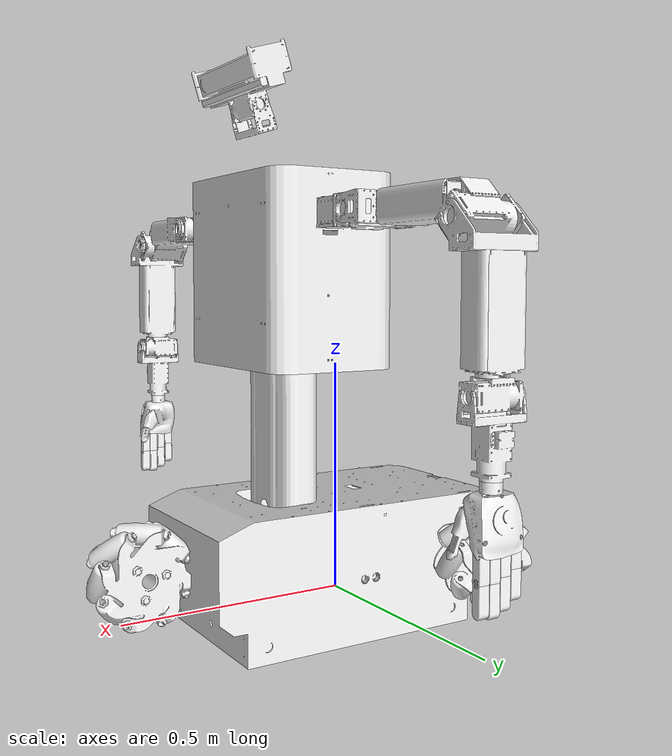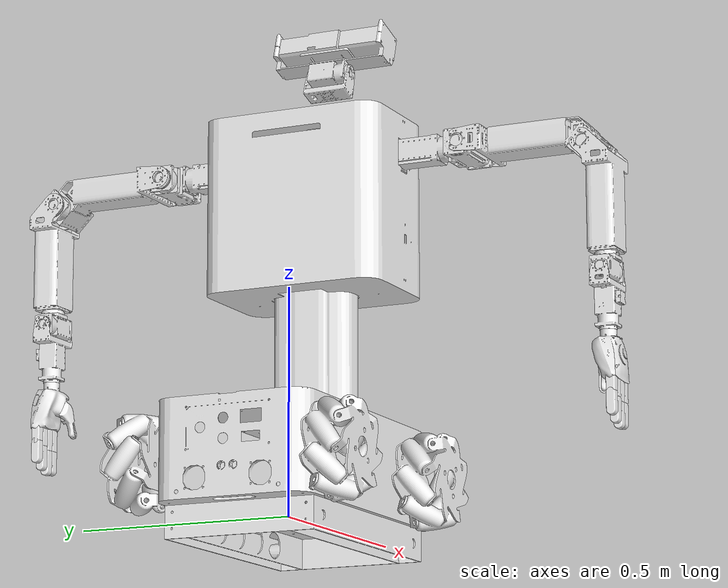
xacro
<?xml version="1.0"?>
<robot name="humic" xmlns:xacro="http://ros.org/wiki/xacro">

    <!-- some parameters -->
    <xacro:property name="pi" value="3.141592654" />

    <xacro:include filename="$(find humic_description)/urdf/materials.xacro"/>

    <xacro:include filename="$(find humic_description)/urdf/humic.gazebo.xacro"/>

    <xacro:include filename="$(find humic_description)/urdf/humic.right_transmission.xacro"/>
    <xacro:include filename="$(find humic_description)/urdf/humic.left_transmission.xacro"/>
    <xacro:include filename="$(find humic_description)/urdf/humic.column_transmission.xacro"/>
    <xacro:include filename="$(find humic_description)/urdf/humic.head_transmission.xacro"/>

    <!-- base footprint -->
    <link name="base_footprint"/>

    <joint name="base_joint" type="fixed">
        <origin xyz="0 0 0.0945" rpy="0 0 0"/>
        <parent link="base_footprint"/>
        <child link="base_link"/>
    </joint>

    <!-- Mobile-Platform Body -->
    <link name="base_link">
        <visual>
            <origin xyz="0 0 0" rpy="0 0 0"/>
            <geometry>
                <mesh filename="package://humic_description/meshes/STL/MobileBody.stl" scale="0.027 0.027 0.027"/>
            </geometry>
            <material name="white"/>
        </visual>

        <collision>
            <origin xyz="0 0 0" rpy="0 0 0"/>
            <geometry>
                <mesh filename="package://humic_description/meshes/STL/MobileBody.stl" scale="0.027 0.027 0.027"/>
            </geometry>
        </collision>

        <inertial>
            <mass value="64.126"/>
            <inertia ixx="2.43844e+08" iyy="2.46565e+09" izz="1.39943e+09" ixy="-3.45214e+06" ixz="9.87419e+06" iyz="-2.83701e+08"/>
        </inertial>
    </link>

    <joint name="front_ultrasonic_joint" type="fixed">
        <origin xyz="0.335 0 0.102" rpy="0 0 0"/>
        <parent link="base_link"/>
        <child link="front_ultrasonic"/>
    </joint>

    <link name="front_ultrasonic">
        <visual>
            <origin xyz="0 0 0" rpy="0 0 0"/>
            <geometry>
                <box size="0.001 0.005 0.005"/>
            </geometry>
            <material name="white"/>
        </visual>
    </link>

    <joint name="left_ultrasonic_joint" type="fixed">
        <origin xyz="-0.01 0.1765 0.102" rpy="0 0 ${pi*0.5}"/>
        <parent link="base_link"/>
        <child link="left_ultrasonic"/>
    </joint>

    <link name="left_ultrasonic">
        <visual>
            <origin xyz="0 0 0" rpy="0 0 0"/>
            <geometry>
                <box size="0.001 0.005 0.005"/>
            </geometry>
            <material name="white"/>
        </visual>
    </link>

    <joint name="right_ultrasonic_joint" type="fixed">
        <origin xyz="-0.01 -0.1765 0.102" rpy="0 0 ${-pi*0.5}"/>
        <parent link="base_link"/>
        <child link="right_ultrasonic"/>
    </joint>

    <link name="right_ultrasonic">
        <visual>
            <origin xyz="0 0 0" rpy="0 0 0"/>
            <geometry>
                <box size="0.001 0.005 0.005"/>
            </geometry>
            <material name="white"/>
        </visual>
    </link>

    <joint name="rear_ultrasonic_joint" type="fixed">
        <origin xyz="-0.325 0 0.102" rpy="0 0 ${pi}"/>
        <parent link="base_link"/>
        <child link="rear_ultrasonic"/>
    </joint>

    <link name="rear_ultrasonic">
        <visual>
            <origin xyz="0 0 0" rpy="0 0 0"/>
            <geometry>
                <box size="0.001 0.005 0.005"/>
            </geometry>
            <material name="white"/>
        </visual>
    </link>

    <!-- Mobile-Platform Wheel -->
    <!-- front left & rear right couple-->
    <!-- front right & rear left couple-->
    <joint name="rear_left_wheel_joint" type="continuous">
        <axis xyz="0 -1 0" />
        <origin xyz="-0.2295 0.2295 0" rpy="0 0 0"/>
        <parent link="base_link"/>
        <child link="rear_left_wheel_link"/>
    </joint>

    <link name="rear_left_wheel_link">
        <visual>
            <origin xyz="0 0 0" rpy="0 0 0"/>
            <geometry>
                <mesh
                    filename="package://humic_description/meshes/STL/wheel_rear_left.stl" scale="0.027 0.027 0.027"/>
            </geometry>
            <material name="white"/>
        </visual>

        <collision>
            <origin xyz="0 0 0" rpy="${pi*0.5} 0 0"/>
            <geometry>
                <cylinder radius="0.108" length="0.0999"/>
            </geometry>
        </collision>

        <inertial>
            <mass value="1.414"/>
            <inertia ixx="7.14710e+07" iyy="1.35915e+08" izz="7.08597e+07" ixy="0.0" ixz="-6.59371e+07" iyz="0.0"/>
        </inertial>
    </link>

    <joint name="rear_right_wheel_joint" type="continuous">
        <axis xyz="0 1 0" />
        <origin xyz="-0.2295 -0.2295 0" rpy="0 0 0"/>
        <parent link="base_link"/>
        <child link="rear_right_wheel_link"/>
    </joint>

    <link name="rear_right_wheel_link">
        <visual>
            <origin xyz="0 0 0" rpy="0 0 0"/>
            <geometry>
                <mesh
                    filename="package://humic_description/meshes/STL/wheel_rear_right.stl" scale="0.027 0.027 0.027"/>
            </geometry>
            <material name="white"/>
        </visual>

        <collision>
            <origin xyz="0 0 0" rpy="${pi*0.5} 0 0"/>
            <geometry>
                <cylinder radius="0.108" length="0.0999"/>
            </geometry>
        </collision>

        <inertial>
            <mass value="1.662"/>
            <inertia ixx="8.39093e+07" iyy="1.59927e+08" izz="8.34746e+07" ixy="0.0" ixz="7.74594e+07" iyz="0.0"/>
        </inertial>
    </link>

    <joint name="front_right_wheel_joint" type="continuous">
        <axis xyz="0 1 0" />
        <origin xyz="0.2295 0.2295 0" rpy="0 0 0"/>
        <parent link="base_link"/>
        <child link="front_right_wheel_link"/>
    </joint>

    <link name="front_right_wheel_link">
        <visual>
            <origin xyz="0 0 0" rpy="0 0 0"/>
            <geometry>
                <mesh
                    filename="package://humic_description/meshes/STL/wheel_front_right.stl" scale="0.027 0.027 0.027"/>
            </geometry>
            <material name="white"/>
        </visual>

        <collision>
            <origin xyz="0 0 0" rpy="${pi*0.5} 0 0"/>
            <geometry>
                <cylinder radius="0.108" length="0.0999"/>
            </geometry>
        </collision>

        <inertial>
            <mass value="1.662"/>
            <inertia ixx="8.39093e+07" iyy="1.59927e+08" izz="8.34746e+07" ixy="0.0" ixz="7.74594e+07" iyz="0.0"/>
        </inertial>
    </link>

    <joint name="front_left_wheel_joint" type="continuous">
        <axis xyz="0 -1 0" />
        <origin xyz="0.2295 -0.2295 0" rpy="0 0 0"/>
        <parent link="base_link"/>
        <child link="front_left_wheel_link"/>
    </joint>

    <link name="front_left_wheel_link">
        <visual>
            <origin xyz="0 0 0" rpy="0 0 0"/>
            <geometry>
                <mesh
                    filename="package://humic_description/meshes/STL/wheel_front_left.stl" scale="0.027 0.027 0.027"/>
            </geometry>
            <material name="white"/>
        </visual>

        <collision>
            <origin xyz="0 0 0" rpy="${pi*0.5} 0 0"/>
            <geometry>
                <cylinder radius="0.108" length="0.0999"/>
            </geometry>
        </collision>

        <inertial>
            <mass value="1.414"/>
            <inertia ixx="7.14710e+07" iyy="1.35915e+08" izz="7.08597e+07" ixy="0.0" ixz="-6.59371e+07" iyz="0.0"/>
        </inertial>
    </link>

    <!-- Column -->
    <joint name="base_column_joint" type="fixed">
        <origin xyz="0 0 0" rpy="0 0 0"/>
        <parent link="base_link"/>
        <child link="base_column_link"/>
    </joint>

    <link name="base_column_link">
        <visual>
            <origin xyz="0.135 0 0.2" rpy="0 0 0"/>
            <geometry>
                <mesh
                    filename="package://humic_description/meshes/STL/column_base.stl" scale="0.027 0.027 0.027"/>
            </geometry>
            <material name="white"/>
        </visual>

        <collision>
            <origin xyz="0.135 0 0.2" rpy="0 0 0"/>
            <geometry>
                <mesh
                    filename="package://humic_description/meshes/STL/column_base.stl" scale="0.027 0.027 0.027"/>
            </geometry>
        </collision>

        <inertial>
            <mass value="4.797"/>
            <inertia ixx="1.01100e+09" iyy="9.45199e+07" izz="9.47275e+08" ixy="-9.00000e-03" ixz="-8.00000e-03" iyz="2.36858e+08"/>
        </inertial>
    </link>

    <joint name="inner_column_joint" type="prismatic">
        <axis xyz="0 0 1" />
        <limit velocity="0.01" effort="1000" lower="0" upper="0.50"/>
        <origin xyz="0.135 0 0.05" rpy="0 0 0"/>
        <parent link="base_column_link"/>
        <child link="inner_column_link"/>
    </joint>

    <link name="inner_column_link">
        <visual>
            <origin xyz="0 0 0.4" rpy="0 0 0"/>
            <geometry>
                <mesh
                    filename="package://humic_description/meshes/STL/column_inner.stl" scale="0.027 0.027 0.027"/>
            </geometry>
            <material name="white"/>
        </visual>

        <collision>
            <origin xyz="0 0 0.4" rpy="0 0 0"/>
            <geometry>
                <mesh
                    filename="package://humic_description/meshes/STL/column_inner.stl" scale="0.027 0.027 0.027"/>
            </geometry>
        </collision>

        <inertial>
            <mass value="2.349"/>
            <inertia ixx="6.16980e+08" iyy="4.39384e+07" izz="5.85545e+08" ixy="7.48858e+05" ixz="1.26949e+05" iyz="1.35294e+08"/>
        </inertial>
    </link>

    <!-- Torso -->
    <joint name="torso_joint" type="fixed">
        <origin xyz="0 0 0" rpy="0 0 0"/>
        <parent link="inner_column_link"/>
        <child link="torso_link"/>
    </joint>

    <link name="torso_link">
        <visual>
            <origin xyz="-0.0432 0 0.675" rpy="0 0 0"/>
            <geometry>
                <mesh
                    filename="package://humic_description/meshes/STL/torso.stl" scale="0.027 0.027 0.027"/>
            </geometry>
            <material name="white"/>
        </visual>

        <collision>
            <origin xyz="-0.0081 0 0.55" rpy="0 0 0"/>
            <geometry>
                <box size="0.297 0.432 0.405"/>
            </geometry>
        </collision>

        <inertial>
            <mass value="18.232"/>
            <inertia ixx="7.07404e+09" iyy="7.93876e+08" izz="6.78660e+09" ixy="-5.74440e+07" ixz="-1.45790e+07" iyz="1.56352e+09"/>
        </inertial>
    </link>

    <!-- head(Pan(neck), Tile(head), Kinect V2)-->
    <joint name="torso_neck_joint" type="fixed">
        <origin xyz="0 0 -0.0675" rpy="0 0 0"/>
        <parent link="torso_link"/>
        <child link="neck_link"/>
    </joint>

    <link name="neck_link">
        <visual>
            <origin xyz="-0.135 0 0" rpy="0 0 0"/>
            <geometry>
                <mesh
                    filename="package://humic_description/meshes/STL/neck.stl" scale="0.027 0.027 0.027"/>
            </geometry>
            <material name="white"/>
        </visual>

        <inertial>
            <mass value="0.732"/>
            <inertia ixx="4.90438e+08" iyy="2.52873e+07" izz="4.65475e+08" ixy="-4.24542e+03" ixz="-9.69919e+02" iyz="1.07698e+08"/>
        </inertial>
    </link>

    <joint name="neck_joint" type="revolute">
        <axis xyz="0 0 1" />
        <limit velocity="6.5" effort="1000" lower="${-pi*0.5}" upper="${pi*0.5}" />
        <dynamics damping="0.7"/>
        <origin xyz="0.0621 0 0.9099" rpy="0 0.3 0"/>
        <parent link="neck_link"/>
        <child link="head_link"/>
    </joint>

    <link name="head_link">
        <visual>
            <origin xyz="-0.1971 0 -0.9126" rpy="0 0 0"/>
            <geometry>
                <mesh
                    filename="package://humic_description/meshes/STL/neck_head.stl" scale="0.027 0.027 0.027"/>
            </geometry>
            <material name="white"/>
        </visual>

        <inertial>
            <mass value="0.087"/>
            <inertia ixx="6.80975e+07" iyy="3.08478e+06" izz="6.52339e+07" ixy="-2.97713e+05" ixz="-6.25864e+04" iyz="1.38758e+07"/>
        </inertial>
    </link>

    <joint name="head_joint" type="revolute">
        <axis xyz="0 -1 0" />
        <limit velocity="6.5" effort="1000" lower="${-pi*0.5}" upper="${pi*0.5}" />
        <dynamics damping="0.7"/>
        <origin xyz="0 0 0.05" rpy="0 0 0"/>
        <parent link="head_link"/>
        <child link="head_kinect_link"/>
    </joint>

    <link name="head_kinect_link">
        <visual>
            <origin xyz="-0.2295 0 -0.945" rpy="0 0 0"/>
            <geometry>
                <mesh
                    filename="package://humic_description/meshes/STL/head_kinect.stl" scale="0.027 0.027 0.027"/>
            </geometry>
            <material name="white"/>
        </visual>

        <collision>
            <origin xyz="0 0 0.0648" rpy="0 0 0"/>
            <geometry>
                <box size="0.0945 0.2835 0.0864"/>
            </geometry>
        </collision>

        <inertial>
            <mass value="1.463"/>
            <inertia ixx="1.33775e+09" iyy="3.08478e+06" izz="1.27157e+09" ixy="1.06009e+06" ixz="2.26498e+05" iyz="1.38758e+07"/>
        </inertial>
    </link>

    <!-- Camera Sensor -->
    <joint name="camera_joint" type="fixed">
        <origin xyz="0 0 0" rpy="0 0 0"/>
        <parent link="head_kinect_link"/>
        <child link="camera_link"/>
    </joint>

    <link name="camera_link">
        <visual>
            <origin xyz="0.033 -0.1026 0.0675" rpy="0 0 0"/>
            <geometry>
                <box size="0.001 0.01 0.01"/>
            </geometry>
            <material name="white"/>
        </visual>
    </link>

    <!-- IMU Sensor -->
    <joint name="imu_joint" type="fixed">
        <origin xyz="0 0 0" rpy="0 0 0"/>
        <parent link="torso_link"/>
        <child link="imu_link"/>
    </joint>

    <link name="imu_link">
        <visual>
            <origin xyz="0.0621 0.0216 0.6615" rpy="0 0 0"/>
            <geometry>
                <box size="0.00135 0.0054 0.0054"/>
            </geometry>
            <material name="white"/>
        </visual>
    </link>

    <!-- Right ARM -->
    <joint name="r_arm_body_joint" type="fixed">
        <origin xyz="0 0 -0.0675" rpy="0 0 0"/>
        <parent link="torso_link"/>
        <child link="r_shoulder_link"/>
    </joint>

    <link name="r_shoulder_link">
        <visual>
            <origin xyz="-0.134 0.001 0.003" rpy="0 0 0"/>
            <geometry>
                <mesh
                    filename="package://humic_description/meshes/STL/r_shoulder.stl" scale="0.027 0.027 0.027"/>
            </geometry>
            <material name="white"/>
        </visual>

        <collision>
            <origin xyz="-0.134 0.001 0.003" rpy="0 0 0"/>
            <geometry>
                <mesh
                    filename="package://humic_description/meshes/STL/r_shoulder.stl" scale="0.027 0.027 0.027"/>
            </geometry>
        </collision>

        <inertial>
            <mass value="0.324"/>
            <inertia ixx="1.58637e+08" iyy="2.64707e+07" izz="1.72867e+08" ixy="-5.51744e+07" ixz="-1.09893e+07" iyz="3.03653e+07"/>
        </inertial>
    </link>

    <joint name="r_shoulder_joint" type="revolute">
        <axis xyz="0 -1 0" />
        <limit velocity="6.5" effort="1000" lower="${-pi}" upper="${pi}" />
        <dynamics damping="0.7"/>
        <origin xyz="0.0108 -0.3321 0.729" rpy="0 0 0"/>
        <parent link="r_shoulder_link"/>
        <child link="r_upperArm_link"/>
    </joint>

    <link name="r_upperArm_link">
        <visual>
            <origin xyz="-0.1458 0.3375 -0.7317" rpy="0 0 0"/>
            <geometry>
                <mesh
                    filename="package://humic_description/meshes/STL/r_upperArm.stl" scale="0.027 0.027 0.027"/>
            </geometry>
            <material name="white"/>
        </visual>

        <collision>
            <origin xyz="-0.1458 0.3375 -0.7317" rpy="0 0 0"/>
            <geometry>
                <mesh
                    filename="package://humic_description/meshes/STL/r_upperArm.stl" scale="0.027 0.027 0.027"/>
            </geometry>
        </collision>

        <inertial>
            <mass value="0.353"/>
            <inertia ixx="1.73491e+08" iyy="4.90592e+07" izz="2.08142e+08" ixy="-8.33193e+07" ixz="-1.67769e+07" iyz="3.34583e+07"/>
        </inertial>
    </link>

    <joint name="r_upperArm_joint" type="revolute">
        <axis xyz="1 0 0" />
        <limit velocity="6.5" effort="1000" lower="${-pi*0.5}" upper="${pi*0.5}" />
        <dynamics damping="0.7"/>
        <origin xyz="0 -0.0297 0" rpy="${-pi*0.5} 0 0"/>
        <parent link="r_upperArm_link"/>
        <child link="r_elbow_link"/>
    </joint>

    <link name="r_elbow_link">
        <visual>
            <origin xyz="-0.1458 0.3672 -0.7317" rpy="0 0 0"/>
            <geometry>
                <mesh
                    filename="package://humic_description/meshes/STL/r_elbow.stl" scale="0.027 0.027 0.027"/>
            </geometry>
            <material name="white"/>
        </visual>

        <collision>
            <origin xyz="-0.1458 0.3672 -0.7317" rpy="0 0 0"/>
            <geometry>
                <mesh
                    filename="package://humic_description/meshes/STL/r_elbow.stl" scale="0.027 0.027 0.027"/>
            </geometry>
        </collision>

        <inertial>
            <mass value="0.529"/>
            <inertia ixx="1.38870e+08" iyy="6.80593e+07" izz="1.85969e+08" ixy="-8.50240e+07" ixz="-2.38516e+07" iyz="3.52215e+07"/>
        </inertial>
    </link>

    <joint name="r_elbow_joint" type="revolute">
        <axis xyz="1 0 0" />
        <limit velocity="6.5" effort="1000" lower="${-pi*0.25}" upper="${pi*0.5}" />
        <dynamics damping="0.7"/>
        <origin xyz="0 0.0297 -0.2835" rpy="${pi*0.5} 0 0"/>
        <parent link="r_elbow_link"/>
        <child link="r_foreArm_link"/>
    </joint>

    <link name="r_foreArm_link">
        <visual>
            <origin xyz="-0.1458 0.3375 -0.4482" rpy="0 0 0"/>
            <geometry>
                <mesh
                    filename="package://humic_description/meshes/STL/r_foreArm.stl" scale="0.027 0.027 0.027"/>
            </geometry>
            <material name="white"/>
        </visual>

        <collision>
            <origin xyz="-0.1458 0.3375 -0.4482" rpy="0 0 0"/>
            <geometry>
                <mesh
                    filename="package://humic_description/meshes/STL/r_foreArm.stl" scale="0.027 0.027 0.027"/>
            </geometry>
        </collision>

        <inertial>
            <mass value="0.501"/>
            <inertia ixx="5.38306e+07" iyy="6.94958e+07" izz="1.03905e+08" ixy="-5.05255e+07" ixz="-2.36971e+07" iyz="2.00992e+07"/>
        </inertial>
    </link>

    <joint name="r_foreArm_joint" type="revolute">
        <axis xyz="0 0 -1" />
        <limit velocity="6.5" effort="1000" lower="${-pi}" upper="${pi}" />
        <dynamics damping="0.7"/>
        <origin xyz="0 -0.0297 -0.243" rpy="0 0 0"/>
        <parent link="r_foreArm_link"/>
        <child link="r_lowerArm_link"/>
    </joint>

    <link name="r_lowerArm_link">
        <visual>
            <origin xyz="-0.1458 0.3672 -0.2052" rpy="0 0 0"/>
            <geometry>
                <mesh
                    filename="package://humic_description/meshes/STL/r_lowerArm.stl" scale="0.027 0.027 0.027"/>
            </geometry>
            <material name="white"/>
        </visual>

        <collision>
            <origin xyz="-0.1458 0.3672 -0.2052" rpy="0 0 0"/>
            <geometry>
                <mesh
                    filename="package://humic_description/meshes/STL/r_lowerArm.stl" scale="0.027 0.027 0.027"/>
            </geometry>
        </collision>

        <inertial>
            <mass value="0.144"/>
            <inertia ixx="6.68413e+06" iyy="1.98639e+07" izz="2.10626e+07" ixy="-8.18631e+06" ixz="-6.74644e+06" iyz="3.22949e+06"/>
        </inertial>
    </link>

    <joint name="r_lowerArm_joint" type="revolute">
        <axis xyz="1 0 0" />
        <limit velocity="13" effort="1000" lower="${-pi*0.5}" upper="${pi*0.5}" />
        <dynamics damping="0.7"/>
        <origin xyz="0 0 -0.0324" rpy="0 0 0"/>
        <parent link="r_lowerArm_link"/>
        <child link="r_wrist_link"/>
    </joint>

    <link name="r_wrist_link">
        <visual>
            <origin xyz="-0.1458 0.3672 -0.1728" rpy="0 0 0"/>
            <geometry>
                <mesh
                    filename="package://humic_description/meshes/STL/r_wrist.stl" scale="0.027 0.027 0.027"/>
            </geometry>
            <material name="white"/>
        </visual>

        <collision>
            <origin xyz="-0.1458 0.3672 -0.1728" rpy="0 0 0"/>
            <geometry>
                <mesh
                    filename="package://humic_description/meshes/STL/r_wrist.stl" scale="0.027 0.027 0.027"/>
            </geometry>
        </collision>

        <inertial>
            <mass value="0.163"/>
            <inertia ixx="4.76597e+06" iyy="2.26942e+07" izz="2.11061e+07" ixy="-5.33281e+06" ixz="-7.80384e+06" iyz="2.14027e+06"/>
        </inertial>
    </link>

    <joint name="r_wrist_joint" type="revolute">
        <axis xyz="0 0 -1" />
        <limit velocity="13" effort="1000" lower="${-pi}" upper="${pi}" />
        <dynamics damping="0.7"/>
        <origin xyz="0 0 -0.1296" rpy="0 0 0"/>
        <parent link="r_wrist_link"/>
        <child link="r_hand_link"/>
    </joint>

    <link name="r_hand_link">
        <visual>
            <origin xyz="-0.1458 0.3672 -0.0405" rpy="0 0 0"/>
            <geometry>
                <mesh
                    filename="package://humic_description/meshes/STL/r_hand.stl" scale="0.027 0.027 0.027"/>
            </geometry>
            <material name="white"/>
        </visual>

        <collision>
            <origin xyz="-0.1458 0.3672 -0.0405" rpy="0 0 0"/>
            <geometry>
                <mesh
                    filename="package://humic_description/meshes/STL/r_hand.stl" scale="0.027 0.027 0.027"/>
            </geometry>
        </collision>

        <inertial>
            <mass value="0.072"/>
            <inertia ixx="1.38325e+06" iyy="9.65946e+06" izz="8.41135e+06" ixy="7.83401e+04" ixz="-3.27407e+06" iyz="-2.39035e+04"/>
        </inertial>
    </link>

    <joint name="r_hand_joint" type="fixed">
        <origin xyz="0 0 0" rpy="0 0 0"/>
        <parent link="r_hand_link"/>
        <child link="r_finger_link"/>
    </joint>

    <link name="r_finger_link">
        <inertial>
            <mass value="0.005"/>
            <inertia ixx="0.001" iyy="0.001" izz="0.001" ixy="0.0" ixz="0.0" iyz="0.0"/>
        </inertial>
    </link>

    <joint name="r_finger1_1_joint" type="revolute">
        <axis xyz="1 0 0" />
        <limit velocity="3" effort="1000" lower="0" upper="${pi*0.5}" />
        <dynamics damping="0.7"/>
        <origin xyz="0.0324 -0.0162 -0.0972" rpy="0 0 0"/>
        <parent link="r_finger_link"/>
        <child link="r_finger1_1_link"/>
    </joint>

    <link name="r_finger1_1_link">
        <visual>
            <origin xyz="-0.1782 0.378 0.06885" rpy="0 0 0"/>
            <geometry>
                <mesh
                    filename="package://humic_description/meshes/STL/r_finger1_1.stl" scale="0.027 0.027 0.027"/>
            </geometry>
            <material name="white"/>
        </visual>

        <collision>
            <origin xyz="-0.1782 0.378 0.06885" rpy="0 0 0"/>
            <geometry>
                <mesh
                    filename="package://humic_description/meshes/STL/r_finger1_1.stl" scale="0.027 0.027 0.027"/>
            </geometry>
        </collision>

        <inertial>
            <mass value="0.054"/>
            <inertia ixx="2.00226e+06" iyy="8.34899e+06" izz="7.29389e+06" ixy="1.76606e+06" ixz="-3.22704e+06" iyz="-8.35818e+05"/>
        </inertial>
    </link>

    <joint name="r_finger1_2_joint" type="revolute">
        <axis xyz="1 0 0" />
        <limit velocity="3" effort="1000" lower="0" upper="${pi*0.5}" />
        <dynamics damping="0.7"/>
        <origin xyz="0 0 -0.054" rpy="0 0 0"/>
        <parent link="r_finger1_1_link"/>
        <child link="r_finger1_2_link"/>
    </joint>

    <link name="r_finger1_2_link">
        <visual>
            <origin xyz="-0.1782 0.378 0.1215" rpy="0 0 0"/>
            <geometry>
                <mesh
                    filename="package://humic_description/meshes/STL/r_finger1_2.stl" scale="0.027 0.027 0.027"/>
            </geometry>
            <material name="white"/>
        </visual>

        <collision>
            <origin xyz="-0.1782 0.378 0.1215" rpy="0 0 0"/>
            <geometry>
                <mesh
                    filename="package://humic_description/meshes/STL/r_finger1_2.stl" scale="0.027 0.027 0.027"/>
            </geometry>
        </collision>

        <inertial>
            <mass value="0.050"/>
            <inertia ixx="2.35967e+06" iyy="7.74258e+06" izz="7.26480e+06" ixy="2.42117e+06" ixz="-2.99356e+06" iyz="-1.14637e+06"/>
        </inertial>
    </link>

    <joint name="r_finger2_1_joint" type="revolute">
        <axis xyz="1 0 0" />
        <limit velocity="3" effort="1000" lower="0" upper="${pi*0.5}" />
        <dynamics damping="0.7"/>
        <origin xyz="0.0108 -0.0162 -0.0972" rpy="0 0 0"/>
        <parent link="r_finger_link"/>
        <child link="r_finger2_1_link"/>
    </joint>

    <link name="r_finger2_1_link">
        <visual>
            <origin xyz="-0.1566 0.378 0.06885" rpy="0 0 0"/>
            <geometry>
                <mesh
                    filename="package://humic_description/meshes/STL/r_finger2_1.stl" scale="0.027 0.027 0.027"/>
            </geometry>
            <material name="white"/>
        </visual>

        <collision>
            <origin xyz="-0.1566 0.378 0.06885" rpy="0 0 0"/>
            <geometry>
                <mesh
                    filename="package://humic_description/meshes/STL/r_finger2_1.stl" scale="0.027 0.027 0.027"/>
            </geometry>
        </collision>

        <inertial>
            <mass value="0.054"/>
            <inertia ixx="1.66064e+06" iyy="8.00703e+06" izz="7.29424e+06" ixy="1.76673e+06" ixz="-2.84288e+06" iyz="-7.36602e+05"/>
        </inertial>
    </link>

    <joint name="r_finger2_2_joint" type="revolute">
        <axis xyz="1 0 0" />
        <limit velocity="3" effort="1000" lower="0" upper="${pi*0.5}" />
        <dynamics damping="0.7"/>
        <origin xyz="0 0 -0.0567" rpy="0 0 0"/>
        <parent link="r_finger2_1_link"/>
        <child link="r_finger2_2_link"/>
    </joint>

    <link name="r_finger2_2_link">
        <visual>
            <origin xyz="-0.1566 0.378 0.1215" rpy="0 0 0"/>
            <geometry>
                <mesh
                    filename="package://humic_description/meshes/STL/r_finger2_2.stl" scale="0.027 0.027 0.027"/>
            </geometry>
            <material name="white"/>
        </visual>

        <collision>
            <origin xyz="-0.1566 0.378 0.1215" rpy="0 0 0"/>
            <geometry>
                <mesh
                    filename="package://humic_description/meshes/STL/r_finger2_2.stl" scale="0.027 0.027 0.027"/>
            </geometry>
        </collision>

        <inertial>
            <mass value="0.050"/>
            <inertia ixx="2.04291e+06" iyy="7.42535e+06" izz="7.26528e+06" ixy="2.42180e+06" ixz="-2.63735e+06" iyz="-1.01023e+06"/>
        </inertial>
    </link>

    <joint name="r_finger3_1_joint" type="revolute">
        <axis xyz="1 0 0" />
        <limit velocity="3" effort="1000" lower="0" upper="${pi*0.5}" />
        <dynamics damping="0.7"/>
        <origin xyz="-0.0108 -0.0162 -0.0972" rpy="0 0 0"/>
        <parent link="r_finger_link"/>
        <child link="r_finger3_1_link"/>
    </joint>

    <link name="r_finger3_1_link">
        <visual>
            <origin xyz="-0.135 0.378 0.06885" rpy="0 0 0"/>
            <geometry>
                <mesh
                    filename="package://humic_description/meshes/STL/r_finger3_1.stl" scale="0.027 0.027 0.027"/>
            </geometry>
            <material name="white"/>
        </visual>

        <collision>
            <origin xyz="-0.135 0.378 0.06885" rpy="0 0 0"/>
            <geometry>
                <mesh
                    filename="package://humic_description/meshes/STL/r_finger3_1.stl" scale="0.027 0.027 0.027"/>
            </geometry>
        </collision>

        <inertial>
            <mass value="0.047"/>
            <inertia ixx="1.14431e+06" iyy="6.66013e+06" izz="6.27001e+06" ixy="1.46901e+06" ixz="-2.12432e+06" iyz="-5.29681e+05"/>
        </inertial>
    </link>

    <joint name="r_finger3_2_joint" type="revolute">
        <axis xyz="1 0 0" />
        <limit velocity="3" effort="1000" lower="0" upper="${pi*0.5}" />
        <dynamics damping="0.7"/>
        <origin xyz="0 0 -0.0459" rpy="0 0 0"/>
        <parent link="r_finger3_1_link"/>
        <child link="r_finger3_2_link"/>
    </joint>

    <link name="r_finger3_2_link">
        <visual>
            <origin xyz="-0.135 0.378 0.1107" rpy="0 0 0"/>
            <geometry>
                <mesh
                    filename="package://humic_description/meshes/STL/r_finger3_2.stl" scale="0.027 0.027 0.027"/>
            </geometry>
            <material name="white"/>
        </visual>

        <collision>
            <origin xyz="-0.135 0.378 0.1107" rpy="0 0 0"/>
            <geometry>
                <mesh
                    filename="package://humic_description/meshes/STL/r_finger3_2.stl" scale="0.027 0.027 0.027"/>
            </geometry>
        </collision>

        <inertial>
            <mass value="0.049"/>
            <inertia ixx="1.63689e+06" iyy="7.02269e+06" izz="7.04004e+06" ixy="2.24869e+06" ixz="-2.24091e+06" iyz="-8.11249e+05"/>
        </inertial>
    </link>

    <joint name="r_finger4_1_joint" type="revolute">
        <axis xyz="1 0 0" />
        <limit velocity="3" effort="1000" lower="0" upper="${pi*0.5}" />
        <dynamics damping="0.7"/>
        <origin xyz="-0.0324 -0.0162 -0.0972" rpy="0 0 0"/>
        <parent link="r_finger_link"/>
        <child link="r_finger4_1_link"/>
    </joint>

    <link name="r_finger4_1_link">
        <visual>
            <origin xyz="-0.1134 0.378 0.06885" rpy="0 0 0"/>
            <geometry>
                <mesh
                    filename="package://humic_description/meshes/STL/r_finger4_1.stl" scale="0.027 0.027 0.027"/>
            </geometry>
            <material name="white"/>
        </visual>

        <collision>
            <origin xyz="-0.1134 0.378 0.06885" rpy="0 0 0"/>
            <geometry>
                <mesh
                    filename="package://humic_description/meshes/STL/r_finger4_1.stl" scale="0.027 0.027 0.027"/>
            </geometry>
        </collision>

        <inertial>
            <mass value="0.040"/>
            <inertia ixx="7.58548e+05" iyy="5.51043e+06" izz="5.33369e+06" ixy="1.19722e+06" ixz="-1.53370e+06" iyz="-3.64204e+05"/>
        </inertial>
    </link>

    <joint name="r_finger4_2_joint" type="revolute">
        <axis xyz="1 0 0" />
        <limit velocity="3" effort="1000" lower="0" upper="${pi*0.5}" />
        <dynamics damping="0.7"/>
        <origin xyz="0 0 -0.0405" rpy="0 0 0"/>
        <parent link="r_finger4_1_link"/>
        <child link="r_finger4_2_link"/>
    </joint>

    <link name="r_finger4_2_link">
        <visual>
            <origin xyz="-0.1134 0.378 0.1053" rpy="0 0 0"/>
            <geometry>
                <mesh
                    filename="package://humic_description/meshes/STL/r_finger4_2.stl" scale="0.027 0.027 0.027"/>
            </geometry>
            <material name="white"/>
        </visual>

        <collision>
            <origin xyz="-0.1134 0.378 0.1053" rpy="0 0 0"/>
            <geometry>
                <mesh
                    filename="package://humic_description/meshes/STL/r_finger4_2.stl" scale="0.027 0.027 0.027"/>
            </geometry>
        </collision>

        <inertial>
            <mass value="0.047"/>
            <inertia ixx="1.20559e+06" iyy="6.45087e+06" izz="6.56048e+06" ixy="1.95416e+06" ixz="-1.79625e+06" iyz="-5.94794e+05"/>
        </inertial>
    </link>

    <joint name="r_thumb_joint" type="revolute">
        <axis xyz="0 0 1" />
        <limit velocity="3" effort="1000" lower="0" upper="${pi*0.25}" />
        <dynamics damping="0.7"/>
        <origin xyz="0.0135 0.0216 -0.054" rpy="0 0 ${-pi*0.25}"/>
        <parent link="r_finger_link"/>
        <child link="r_thumb_link"/>
    </joint>

    <link name="r_thumb_link">
        <visual>
            <origin xyz="-0.1539 0.3402 0.0135" rpy="0 0 0"/>
            <geometry>
                <mesh
                    filename="package://humic_description/meshes/STL/r_thumb.stl" scale="0.027 0.027 0.027"/>
            </geometry>
            <material name="white"/>
        </visual>

        <collision>
            <origin xyz="-0.1539 0.3402 0.0135" rpy="0 0 0"/>
            <geometry>
                <mesh
                    filename="package://humic_description/meshes/STL/r_thumb.stl" scale="0.027 0.027 0.027"/>
            </geometry>
        </collision>

        <inertial>
            <mass value="0.063"/>
            <inertia ixx="1.64286e+06" iyy="7.40185e+06" izz="5.91536e+06" ixy="5.87329e+05" ixz="-3.01472e+06" iyz="-3.10704e+05"/>
        </inertial>
    </link>

    <!-- Left ARM -->
    <joint name="l_arm_body_joint" type="fixed">
        <origin xyz="0 0 -0.0675" rpy="0 0 0"/>
        <parent link="torso_link"/>
        <child link="l_shoulder_link"/>
    </joint>

    <link name="l_shoulder_link">
        <visual>
            <origin xyz="-0.134 0.001 0.003" rpy="0 0 0"/>
            <geometry>
                <mesh
                    filename="package://humic_description/meshes/STL/l_shoulder.stl" scale="0.027 0.027 0.027"/>
            </geometry>
            <material name="white"/>
        </visual>

        <collision>
            <origin xyz="-0.134 0.001 0.003" rpy="0 0 0"/>
            <geometry>
                <mesh
                    filename="package://humic_description/meshes/STL/l_shoulder.stl" scale="0.027 0.027 0.027"/>
            </geometry>
        </collision>

        <inertial>
            <mass value="0.324"/>
            <inertia ixx="1.58637e+08" iyy="2.64707e+07" izz="1.72867e+08" ixy="5.51744e+07" ixz="1.09893e+07" iyz="3.03653e+07"/>
        </inertial>
    </link>

    <joint name="l_shoulder_joint" type="revolute">
        <axis xyz="0 1 0" />
        <limit velocity="6.5" effort="1000" lower="${-pi}" upper="${pi}" />
        <dynamics damping="0.7"/>
        <origin xyz="0.0108 0.3321 0.729" rpy="0 0 0"/>
        <parent link="l_shoulder_link"/>
        <child link="l_upperArm_link"/>
    </joint>

    <link name="l_upperArm_link">
        <visual>
            <origin xyz="-0.1458 -0.3375 -0.7317" rpy="0 0 0"/>
            <geometry>
                <mesh
                    filename="package://humic_description/meshes/STL/l_upperArm.stl" scale="0.027 0.027 0.027"/>
            </geometry>
            <material name="white"/>
        </visual>

        <collision>
            <origin xyz="-0.1458 -0.3375 -0.7317" rpy="0 0 0"/>
            <geometry>
                <mesh
                    filename="package://humic_description/meshes/STL/l_upperArm.stl" scale="0.027 0.027 0.027"/>
            </geometry>
        </collision>

        <inertial>
            <mass value="0.353"/>
            <inertia ixx="1.73201e+08" iyy="4.87701e+07" izz="2.08141e+08" ixy="8.33190e+07" ixz="1.64043e+07" iyz="3.27317e+07"/>
        </inertial>
    </link>

    <joint name="l_upperArm_joint" type="revolute">
        <axis xyz="-1 0 0" />
        <limit velocity="6.5" effort="1000" lower="${-pi*0.5}" upper="${pi*0.5}" />
        <dynamics damping="0.7"/>
        <origin xyz="0 0.0297 0" rpy="${pi*0.5} 0 0"/>
        <parent link="l_upperArm_link"/>
        <child link="l_elbow_link"/>
    </joint>

    <link name="l_elbow_link">
        <visual>
            <origin xyz="-0.1458 -0.3672 -0.7317" rpy="0 0 0"/>
            <geometry>
                <mesh
                    filename="package://humic_description/meshes/STL/l_elbow.stl" scale="0.027 0.027 0.027"/>
            </geometry>
            <material name="white"/>
        </visual>

        <collision>
            <origin xyz="-0.1458 -0.3672 -0.7317" rpy="0 0 0"/>
            <geometry>
                <mesh
                    filename="package://humic_description/meshes/STL/l_elbow.stl" scale="0.027 0.027 0.027"/>
            </geometry>
        </collision>

        <inertial>
            <mass value="0.529"/>
            <inertia ixx="1.38809e+08" iyy="6.79988e+07" izz="1.85969e+08" ixy="8.50239e+07" ixz="2.37845e+07" iyz="3.50234e+07"/>
        </inertial>
    </link>

    <joint name="l_elbow_joint" type="revolute">
        <axis xyz="-1 0 0" />
        <limit velocity="6.5" effort="1000" lower="${-pi*0.25}" upper="${pi*0.5}" />
        <dynamics damping="0.7"/>
        <origin xyz="0 -0.0297 -0.2835" rpy="${-pi*0.5} 0 0"/>
        <parent link="l_elbow_link"/>
        <child link="l_foreArm_link"/>
    </joint>

    <link name="l_foreArm_link">
        <visual>
            <origin xyz="-0.1458 -0.3375 -0.4482" rpy="0 0 0"/>
            <geometry>
                <mesh
                    filename="package://humic_description/meshes/STL/l_foreArm.stl" scale="0.027 0.027 0.027"/>
            </geometry>
            <material name="white"/>
        </visual>

        <collision>
            <origin xyz="-0.1458 -0.3375 -0.4482" rpy="0 0 0"/>
            <geometry>
                <mesh
                    filename="package://humic_description/meshes/STL/l_foreArm.stl" scale="0.027 0.027 0.027"/>
            </geometry>
        </collision>

        <inertial>
            <mass value="0.501"/>
            <inertia ixx="5.37910e+07" iyy="6.94563e+07" izz="1.03905e+08" ixy="5.05255e+07" ixz="2.36541e+07" iyz="2.00295e+07"/>
        </inertial>
    </link>

    <joint name="l_foreArm_joint" type="revolute">
        <axis xyz="0 0 -1" />
        <limit velocity="6.5" effort="1000" lower="${-pi}" upper="${pi}" />
        <dynamics damping="0.7"/>
        <origin xyz="0 0.0297 -0.243" rpy="0 0 0"/>
        <parent link="l_foreArm_link"/>
        <child link="l_lowerArm_link"/>
    </joint>

    <link name="l_lowerArm_link">
        <visual>
            <origin xyz="-0.1458 -0.3672 -0.2052" rpy="0 0 0"/>
            <geometry>
                <mesh
                    filename="package://humic_description/meshes/STL/l_lowerArm.stl" scale="0.027 0.027 0.027"/>
            </geometry>
            <material name="white"/>
        </visual>

        <collision>
            <origin xyz="-0.1458 -0.3672 -0.2052" rpy="0 0 0"/>
            <geometry>
                <mesh
                    filename="package://humic_description/meshes/STL/l_lowerArm.stl" scale="0.027 0.027 0.027"/>
            </geometry>
        </collision>

        <inertial>
            <mass value="0.144"/>
            <inertia ixx="6.75832e+06" iyy="1.99380e+07" izz="2.10627e+07" ixy="8.18639e+06" ixz="6.83971e+06" iyz="3.27467e+06"/>
        </inertial>
    </link>

    <joint name="l_lowerArm_joint" type="revolute">
        <axis xyz="-1 0 0" />
        <limit velocity="13" effort="1000" lower="${-pi*0.5}" upper="${pi*0.5}" />
        <dynamics damping="0.7"/>
        <origin xyz="0 0 -0.0324" rpy="0 0 0"/>
        <parent link="l_lowerArm_link"/>
        <child link="l_wrist_link"/>
    </joint>

    <link name="l_wrist_link">
        <visual>
            <origin xyz="-0.1458 -0.3672 -0.1728" rpy="0 0 0"/>
            <geometry>
                <mesh
                    filename="package://humic_description/meshes/STL/l_wrist.stl" scale="0.027 0.027 0.027"/>
            </geometry>
            <material name="white"/>
        </visual>

        <collision>
            <origin xyz="-0.1458 -0.3672 -0.1728" rpy="0 0 0"/>
            <geometry>
                <mesh
                    filename="package://humic_description/meshes/STL/l_wrist.stl" scale="0.027 0.027 0.027"/>
            </geometry>
        </collision>

        <inertial>
            <mass value="0.163"/>
            <inertia ixx="4.65423e+06" iyy="2.25825e+07" izz="2.11060e+07" ixy="5.33269e+06" ixz="7.66325e+06" iyz="2.09064e+06"/>
        </inertial>
    </link>

    <joint name="l_wrist_joint" type="revolute">
        <axis xyz="0 0 -1" />
        <limit velocity="13" effort="1000" lower="${-pi}" upper="${pi}" />
        <dynamics damping="0.7"/>
        <origin xyz="0 0 -0.1296" rpy="0 0 0"/>
        <parent link="l_wrist_link"/>
        <child link="l_hand_link"/>
    </joint>

    <link name="l_hand_link">
        <visual>
            <origin xyz="-0.1458 -0.3672 -0.0405" rpy="0 0 0"/>
            <geometry>
                <mesh
                    filename="package://humic_description/meshes/STL/l_hand.stl" scale="0.027 0.027 0.027"/>
            </geometry>
            <material name="white"/>
        </visual>

        <collision>
            <origin xyz="-0.1458 -0.3672 -0.0405" rpy="0 0 0"/>
            <geometry>
                <mesh
                    filename="package://humic_description/meshes/STL/l_hand.stl" scale="0.027 0.027 0.027"/>
            </geometry>
        </collision>

        <inertial>
            <mass value="0.072"/>
            <inertia ixx="1.36468e+06" iyy="9.64090e+06" izz="8.41131e+06" ixy="-7.81787e+04" ixz="3.25059e+06" iyz="-2.37841e+04"/>
        </inertial>
    </link>

    <joint name="l_hand_joint" type="fixed">
        <origin xyz="0 0 0" rpy="0 0 0"/>
        <parent link="l_hand_link"/>
        <child link="l_finger_link"/>
    </joint>

    <link name="l_finger_link">
        <inertial>
            <mass value="0.005"/>
            <inertia ixx="0.001" iyy="0.001" izz="0.001" ixy="0.0" ixz="0.0" iyz="0.0"/>
        </inertial>
    </link>

    <joint name="l_finger1_1_joint" type="revolute">
        <axis xyz="-1 0 0" />
        <limit velocity="10" effort="1000" lower="0" upper="${pi*0.5}" />
        <dynamics damping="0.7"/>
        <origin xyz="0.0324 0.0162 -0.0972" rpy="0 0 0"/>
        <parent link="l_finger_link"/>
        <child link="l_finger1_1_link"/>
    </joint>

    <link name="l_finger1_1_link">
        <visual>
            <origin xyz="-0.1782 -0.378 0.06885" rpy="0 0 0"/>
            <geometry>
                <mesh
                    filename="package://humic_description/meshes/STL/l_finger1_1.stl" scale="0.027 0.027 0.027"/>
            </geometry>
            <material name="white"/>
        </visual>

        <collision>
            <origin xyz="-0.1782 -0.378 0.06885" rpy="0 0 0"/>
            <geometry>
                <mesh
                    filename="package://humic_description/meshes/STL/l_finger1_1.stl" scale="0.027 0.027 0.027"/>
            </geometry>
        </collision>

        <inertial>
            <mass value="0.054"/>
            <inertia ixx="1.97821e+06" iyy="8.32441e+06" izz="7.29442e+06" ixy="-1.76709e+06" ixz="3.20096e+06" iyz="-8.29521e+05"/>
        </inertial>
    </link>

    <joint name="l_finger1_2_joint" type="revolute">
        <axis xyz="-1 0 0" />
        <limit velocity="10" effort="1000" lower="0" upper="${pi*0.5}" />
        <dynamics damping="0.7"/>
        <origin xyz="0 0 -0.054" rpy="0 0 0"/>
        <parent link="l_finger1_1_link"/>
        <child link="l_finger1_2_link"/>
    </joint>

    <link name="l_finger1_2_link">
        <visual>
            <origin xyz="-0.1782 -0.378 0.1215" rpy="0 0 0"/>
            <geometry>
                <mesh
                    filename="package://humic_description/meshes/STL/l_finger1_2.stl" scale="0.027 0.027 0.027"/>
            </geometry>
            <material name="white"/>
        </visual>

        <collision>
            <origin xyz="-0.1782 -0.378 0.1215" rpy="0 0 0"/>
            <geometry>
                <mesh
                    filename="package://humic_description/meshes/STL/l_finger1_2.stl" scale="0.027 0.027 0.027"/>
            </geometry>
        </collision>

        <inertial>
            <mass value="0.050"/>
            <inertia ixx="2.33631e+06" iyy="7.71849e+06" izz="7.26553e+06" ixy="-2.42213e+06" ixz="2.96800e+06" iyz="-1.13701e+06"/>
        </inertial>
    </link>

    <joint name="l_finger2_1_joint" type="revolute">
        <axis xyz="-1 0 0" />
        <limit velocity="10" effort="1000" lower="0" upper="${pi*0.5}" />
        <dynamics damping="0.7"/>
        <origin xyz="0.0108 0.0162 -0.0972" rpy="0 0 0"/>
        <parent link="l_finger_link"/>
        <child link="l_finger2_1_link"/>
    </joint>

    <link name="l_finger2_1_link">
        <visual>
            <origin xyz="-0.1566 -0.378 0.06885" rpy="0 0 0"/>
            <geometry>
                <mesh
                    filename="package://humic_description/meshes/STL/l_finger2_1.stl" scale="0.027 0.027 0.027"/>
            </geometry>
            <material name="white"/>
        </visual>

        <collision>
            <origin xyz="-0.1566 -0.378 0.06885" rpy="0 0 0"/>
            <geometry>
                <mesh
                    filename="package://humic_description/meshes/STL/l_finger2_1.stl" scale="0.027 0.027 0.027"/>
            </geometry>
        </collision>

        <inertial>
            <mass value="0.054"/>
            <inertia ixx="1.63918e+06" iyy="7.98538e+06" izz="7.29442e+06" ixy="-1.76709e+06" ixz="2.81680e+06" iyz="-7.29967e+05"/>
        </inertial>
    </link>

    <joint name="l_finger2_2_joint" type="revolute">
        <axis xyz="-1 0 0" />
        <limit velocity="10" effort="1000" lower="0" upper="${pi*0.5}" />
        <dynamics damping="0.7"/>
        <origin xyz="0 0 -0.0567" rpy="0 0 0"/>
        <parent link="l_finger2_1_link"/>
        <child link="l_finger2_2_link"/>
    </joint>

    <link name="l_finger2_2_link">
        <visual>
            <origin xyz="-0.1566 -0.378 0.1215" rpy="0 0 0"/>
            <geometry>
                <mesh
                    filename="package://humic_description/meshes/STL/l_finger2_2.stl" scale="0.027 0.027 0.027"/>
            </geometry>
            <material name="white"/>
        </visual>

        <collision>
            <origin xyz="-0.1566 -0.378 0.1215" rpy="0 0 0"/>
            <geometry>
                <mesh
                    filename="package://humic_description/meshes/STL/l_finger2_2.stl" scale="0.027 0.027 0.027"/>
            </geometry>
        </collision>

        <inertial>
            <mass value="0.050"/>
            <inertia ixx="2.02195e+06" iyy="7.40414e+06" izz="7.26553e+06" ixy="-2.42213e+06" ixz="2.61180e+06" iyz="-1.00056e+06"/>
        </inertial>
    </link>

    <joint name="l_finger3_1_joint" type="revolute">
        <axis xyz="-1 0 0" />
        <limit velocity="10" effort="1000" lower="0" upper="${pi*0.5}" />
        <dynamics damping="0.7"/>
        <origin xyz="-0.0108 0.0162 -0.0972" rpy="0 0 0"/>
        <parent link="l_finger_link"/>
        <child link="l_finger3_1_link"/>
    </joint>

    <link name="l_finger3_1_link">
        <visual>
            <origin xyz="-0.135 -0.378 0.06885" rpy="0 0 0"/>
            <geometry>
                <mesh
                    filename="package://humic_description/meshes/STL/l_finger3_1.stl" scale="0.027 0.027 0.027"/>
            </geometry>
            <material name="white"/>
        </visual>

        <collision>
            <origin xyz="-0.135 -0.378 0.06885" rpy="0 0 0"/>
            <geometry>
                <mesh
                    filename="package://humic_description/meshes/STL/l_finger3_1.stl" scale="0.027 0.027 0.027"/>
            </geometry>
        </collision>

        <inertial>
            <mass value="0.047"/>
            <inertia ixx="1.12808e+06" iyy="6.64404e+06" izz="6.26987e+06" ixy="-1.46874e+06" ixz="2.10188e+06" iyz="-5.23975e+05"/>
        </inertial>
    </link>

    <joint name="l_finger3_2_joint" type="revolute">
        <axis xyz="-1 0 0" />
        <limit velocity="10" effort="1000" lower="0" upper="${pi*0.5}" />
        <dynamics damping="0.7"/>
        <origin xyz="0 0 -0.0459" rpy="0 0 0"/>
        <parent link="l_finger3_1_link"/>
        <child link="l_finger3_2_link"/>
    </joint>

    <link name="l_finger3_2_link">
        <visual>
            <origin xyz="-0.135 -0.378 0.1107" rpy="0 0 0"/>
            <geometry>
                <mesh
                    filename="package://humic_description/meshes/STL/l_finger3_2.stl" scale="0.027 0.027 0.027"/>
            </geometry>
            <material name="white"/>
        </visual>

        <collision>
            <origin xyz="-0.135 -0.378 0.1107" rpy="0 0 0"/>
            <geometry>
                <mesh
                    filename="package://humic_description/meshes/STL/l_finger3_2.stl" scale="0.027 0.027 0.027"/>
            </geometry>
        </collision>

        <inertial>
            <mass value="0.049"/>
            <inertia ixx="1.61883e+06" iyy="7.00484e+06" izz="7.03984e+06" ixy="-2.24841e+06" ixz="2.21603e+06" iyz="-8.02133e+05"/>
        </inertial>
    </link>

    <joint name="l_finger4_1_joint" type="revolute">
        <axis xyz="-1 0 0" />
        <limit velocity="10" effort="1000" lower="0" upper="${pi*0.5}" />
        <dynamics damping="0.7"/>
        <origin xyz="-0.0324 0.0162 -0.0972" rpy="0 0 0"/>
        <parent link="l_finger_link"/>
        <child link="l_finger4_1_link"/>
    </joint>

    <link name="l_finger4_1_link">
        <visual>
            <origin xyz="-0.1134 -0.378 0.06885" rpy="0 0 0"/>
            <geometry>
                <mesh
                    filename="package://humic_description/meshes/STL/l_finger4_1.stl" scale="0.027 0.027 0.027"/>
            </geometry>
            <material name="white"/>
        </visual>

        <collision>
            <origin xyz="-0.1134 -0.378 0.06885" rpy="0 0 0"/>
            <geometry>
                <mesh
                    filename="package://humic_description/meshes/STL/l_finger4_1.stl" scale="0.027 0.027 0.027"/>
            </geometry>
        </collision>

        <inertial>
            <mass value="0.040"/>
            <inertia ixx="7.46660e+05" iyy="5.49889e+06" izz="5.33334e+06" ixy="-1.19649e+06" ixz="1.51461e+06" iyz="-3.59442e+05"/>
        </inertial>
    </link>

    <joint name="l_finger4_2_joint" type="revolute">
        <axis xyz="-1 0 0" />
        <limit velocity="10" effort="1000" lower="0" upper="${pi*0.5}" />
        <dynamics damping="0.7"/>
        <origin xyz="0 0 -0.0405" rpy="0 0 0"/>
        <parent link="l_finger4_1_link"/>
        <child link="l_finger4_2_link"/>
    </joint>

    <link name="l_finger4_2_link">
        <visual>
            <origin xyz="-0.1134 -0.378 0.1053" rpy="0 0 0"/>
            <geometry>
                <mesh
                    filename="package://humic_description/meshes/STL/l_finger4_2.stl" scale="0.027 0.027 0.027"/>
            </geometry>
            <material name="white"/>
        </visual>

        <collision>
            <origin xyz="-0.1134 -0.378 0.1053" rpy="0 0 0"/>
            <geometry>
                <mesh
                    filename="package://humic_description/meshes/STL/l_finger4_2.stl" scale="0.027 0.027 0.027"/>
            </geometry>
        </collision>

        <inertial>
            <mass value="0.047"/>
            <inertia ixx="1.19093e+06" iyy="6.43677e+06" izz="6.55992e+06" ixy="-1.95331e+06" ixz="1.77294e+06" iyz="-5.86803e+05"/>
        </inertial>
    </link>

    <joint name="l_thumb_joint" type="revolute">
        <axis xyz="0 0 -1" />
        <limit velocity="10" effort="1000" lower="0" upper="${pi*0.25}" />
        <dynamics damping="0.7"/>
        <origin xyz="0.0135 -0.0216 -0.054" rpy="0 0 ${pi*0.25}"/>
        <parent link="l_finger_link"/>
        <child link="l_thumb_link"/>
    </joint>

    <link name="l_thumb_link">
        <visual>
            <origin xyz="-0.1539 -0.3402 0.0135" rpy="0 0 0"/>
            <geometry>
                <mesh
                    filename="package://humic_description/meshes/STL/l_thumb.stl" scale="0.027 0.027 0.027"/>
            </geometry>
            <material name="white"/>
        </visual>

        <collision>
            <origin xyz="-0.1539 -0.3402 0.0135" rpy="0 0 0"/>
            <geometry>
                <mesh
                    filename="package://humic_description/meshes/STL/l_thumb.stl" scale="0.027 0.027 0.027"/>
            </geometry>
        </collision>

        <inertial>
            <mass value="0.063"/>
            <inertia ixx="1.67987e+06" iyy="7.48346e+06" izz="5.95949e+06" ixy="-5.89484e+05" ixz="3.06129e+06" iyz="-3.14930e+05"/>
        </inertial>
    </link>

</robot>
